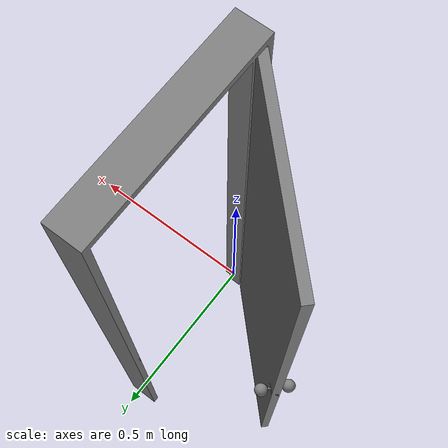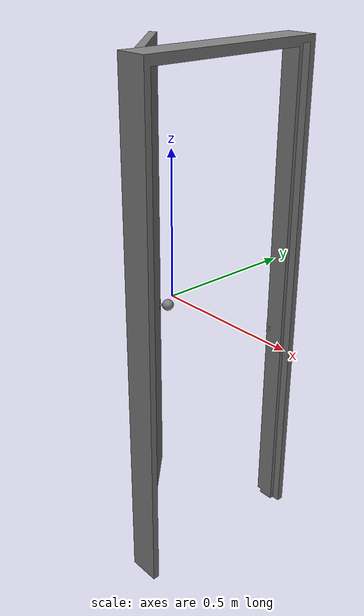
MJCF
<mujoco model="partnet_26616b8217bd2ef12619db0a5cf36754">
    <compiler angle="radian" />
    <size njmax="500" nconmax="100" />
    <asset>
        <mesh name="original-1.obj.convex" file="original-1.stl" />
        <mesh name="original-5.obj.convex" file="original-5.stl" />
        <mesh name="original-3.obj.convex" file="original-3.stl" />
        <mesh name="original-4.obj.convex" file="original-4.stl" />
    </asset>
    <worldbody>
    <body>
        <body name="object">
        <geom quat="0.5 0.5 -0.5 -0.5" type="mesh" mesh="original-1.obj.convex" group="1" conaffinity="0" contype="0"/>
        <body name="link_0" pos="0.104352 -0.254289 0.823603" quat="0.5 0.5 -0.5 -0.5">
            <inertial pos="-0.239003 -0.894826 0.215081" quat="0.654352 0.65223 -0.271013 0.270131" mass="34.9413" diaginertia="9.09228 8.04458 1.05483" />
            <joint name="joint_0" pos="0 0 0" axis="0 1 0" limited="true" range="-0.816814 1.50796" />
            <geom pos="-0.254289 -0.823603 0.104352" type="mesh" mesh="original-5.obj.convex" name="panel" group="0" />
            <body name="link_1" pos="-0.439038 -1.01798 0.395463">
                <inertial pos="0.0110353 -0.00290809 0.00887909" quat="0.649889 0.275326 0.273867 0.653327" mass="0.0747925" diaginertia="0.000166626 0.000166562 1.39156e-05" />
                <joint name="joint_1" pos="0 0 0" axis="-0.707108 1.63273e-08 -0.707106" limited="true" range="-0.785398 0.785398" />
                <geom pos="0.184749 0.194382 -0.291111" type="mesh" mesh="original-3.obj.convex" group="0"/>
                <geom pos="0.184749 0.194382 -0.291111" type="mesh" mesh="original-4.obj.convex" group="0"/>
            </body>
        </body>
        </body>
            <site name="bottom_site" pos="0 0 -0.3" rgba="0 0 0 0" size="0.005"/>
            <site name="top_site" pos="0 0 0.3" rgba="0 0 0 0" size="0.005"/>
            <site name="horizontal_radius_site" pos="0.3 0 0" rgba="0 0 0 0" size="0.5"/>
    </body>
    </worldbody>
    <contact>
        <exclude body1="object" body2="link_0"/>
        <exclude body1="object" body2="link_1"/>
        <exclude body1="link_0" body2="link_0"/>
        <exclude body1="link_0" body2="link_1"/>
        <exclude body1="link_1" body2="link_1"/>
    </contact>
</mujoco>
